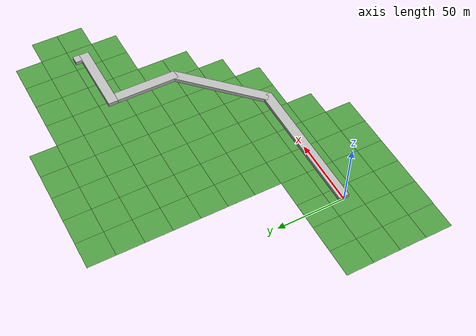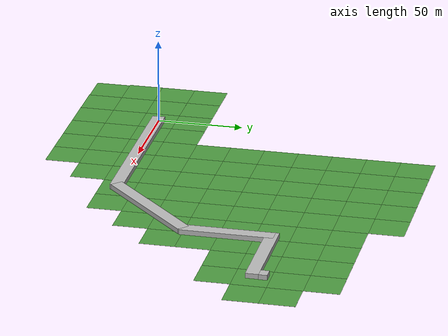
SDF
<sdf version="1.6">
 <world name="outdoor">
  <scene>
   <ambient>0.2 0.2 0.2 1</ambient>
   <grid>0</grid>
   <sky><clouds><speed>4</speed></clouds></sky>
   <background>0.7 0.7 0.7 1</background>
   <shadows>1</shadows>
  </scene>
  <plugin name="ros_interface_plugin" filename="librotors_gazebo_ros_interface_plugin.so"/>
  <plugin name="gazebo_octomap" filename="librotors_gazebo_octomap_plugin.so"/>
  <physics name="default_physics" default="0" type="ode">
   <ode>
    <solver>
     <type>quick</type>
     <iters>1000</iters>
     <sor>1.3</sor>
     <use_dynamic_moi_rescaling>0</use_dynamic_moi_rescaling>
    </solver>
    <constraints>
     <cfm>0</cfm>
     <erp>0.2</erp>
     <contact_max_correcting_vel>100</contact_max_correcting_vel>
     <contact_surface_layer>0.001</contact_surface_layer>
    </constraints>
   </ode>
   <max_step_size>0.01</max_step_size>
   <real_time_factor>1</real_time_factor>
   <real_time_update_rate>100</real_time_update_rate>
  </physics>
  <model name="grass_plane">
   <static>1</static>
   <link name="link">
    <collision name="collision">
     <geometry><plane><normal>0 0 1</normal><size>500 500</size></plane></geometry>
     <surface><friction><ode><mu>0.5</mu><mu2>0.5</mu2></ode></friction></surface>
    </collision>
    <visual name="visual_0">
     <pose>-40 -40 0 0 -0 0</pose>
     <cast_shadows>0</cast_shadows>
     <geometry><plane><normal>0 0 1</normal><size>20 20</size></plane></geometry>
     <material>
      <script>
       <uri>model://grass_plane/materials/scripts</uri>
       <uri>model://grass_plane/materials/textures</uri>
       <name>vrc/grass</name>
      </script>
     </material>
    </visual>
    <visual name="visual_1">
     <pose>-20 -40 0 0 -0 0</pose>
     <cast_shadows>0</cast_shadows>
     <geometry><plane><normal>0 0 1</normal><size>20 20</size></plane></geometry>
     <material>
      <script>
       <uri>model://grass_plane/materials/scripts</uri>
       <uri>model://grass_plane/materials/textures</uri>
       <name>vrc/grass</name>
      </script>
     </material>
    </visual>
    <visual name="visual_2">
     <pose>0 -40 0 0 -0 0</pose>
     <cast_shadows>0</cast_shadows>
     <geometry><plane><normal>0 0 1</normal><size>20 20</size></plane></geometry>
     <material>
      <script>
       <uri>model://grass_plane/materials/scripts</uri>
       <uri>model://grass_plane/materials/textures</uri>
       <name>vrc/grass</name>
      </script>
     </material>
    </visual>
    <visual name="visual_3">
     <pose>20 -40 0 0 -0 0</pose>
     <cast_shadows>0</cast_shadows>
     <geometry><plane><normal>0 0 1</normal><size>20 20</size></plane></geometry>
     <material>
      <script>
       <uri>model://grass_plane/materials/scripts</uri>
       <uri>model://grass_plane/materials/textures</uri>
       <name>vrc/grass</name>
      </script>
     </material>
    </visual>
    <visual name="visual_4">
     <pose>40 -40 0 0 -0 0</pose>
     <cast_shadows>0</cast_shadows>
     <geometry><plane><normal>0 0 1</normal><size>20 20</size></plane></geometry>
     <material>
      <script>
       <uri>model://grass_plane/materials/scripts</uri>
       <uri>model://grass_plane/materials/textures</uri>
       <name>vrc/grass</name>
      </script>
     </material>
    </visual>
    <visual name="visual_5">
     <pose>60 -40 0 0 -0 0</pose>
     <cast_shadows>0</cast_shadows>
     <geometry><plane><normal>0 0 1</normal><size>20 20</size></plane></geometry>
     <material>
      <script>
       <uri>model://grass_plane/materials/scripts</uri>
       <uri>model://grass_plane/materials/textures</uri>
       <name>vrc/grass</name>
      </script>
     </material>
    </visual>
    <visual name="visual_6">
     <pose>-40 -20 0 0 -0 0</pose>
     <cast_shadows>0</cast_shadows>
     <geometry><plane><normal>0 0 1</normal><size>20 20</size></plane></geometry>
     <material>
      <script>
       <uri>model://grass_plane/materials/scripts</uri>
       <uri>model://grass_plane/materials/textures</uri>
       <name>vrc/grass</name>
      </script>
     </material>
    </visual>
    <visual name="visual_7">
     <pose>-20 -20 0 0 -0 0</pose>
     <cast_shadows>0</cast_shadows>
     <geometry><plane><normal>0 0 1</normal><size>20 20</size></plane></geometry>
     <material>
      <script>
       <uri>model://grass_plane/materials/scripts</uri>
       <uri>model://grass_plane/materials/textures</uri>
       <name>vrc/grass</name>
      </script>
     </material>
    </visual>
    <visual name="visual_8">
     <pose>0 -20 0 0 -0 0</pose>
     <cast_shadows>0</cast_shadows>
     <geometry><plane><normal>0 0 1</normal><size>20 20</size></plane></geometry>
     <material>
      <script>
       <uri>model://grass_plane/materials/scripts</uri>
       <uri>model://grass_plane/materials/textures</uri>
       <name>vrc/grass</name>
      </script>
     </material>
    </visual>
    <visual name="visual_9">
     <pose>20 -20 0 0 -0 0</pose>
     <cast_shadows>0</cast_shadows>
     <geometry><plane><normal>0 0 1</normal><size>20 20</size></plane></geometry>
     <material>
      <script>
       <uri>model://grass_plane/materials/scripts</uri>
       <uri>model://grass_plane/materials/textures</uri>
       <name>vrc/grass</name>
      </script>
     </material>
    </visual>
    <visual name="visual_10">
     <pose>40 -20 0 0 -0 0</pose>
     <cast_shadows>0</cast_shadows>
     <geometry><plane><normal>0 0 1</normal><size>20 20</size></plane></geometry>
     <material>
      <script>
       <uri>model://grass_plane/materials/scripts</uri>
       <uri>model://grass_plane/materials/textures</uri>
       <name>vrc/grass</name>
      </script>
     </material>
    </visual>
    <visual name="visual_11">
     <pose>60 -20 0 0 -0 0</pose>
     <cast_shadows>0</cast_shadows>
     <geometry><plane><normal>0 0 1</normal><size>20 20</size></plane></geometry>
     <material>
      <script>
       <uri>model://grass_plane/materials/scripts</uri>
       <uri>model://grass_plane/materials/textures</uri>
       <name>vrc/grass</name>
      </script>
     </material>
    </visual>
    <visual name="visual_12">
     <pose>80 -20 0 0 -0 0</pose>
     <cast_shadows>0</cast_shadows>
     <geometry><plane><normal>0 0 1</normal><size>20 20</size></plane></geometry>
     <material>
      <script>
       <uri>model://grass_plane/materials/scripts</uri>
       <uri>model://grass_plane/materials/textures</uri>
       <name>vrc/grass</name>
      </script>
     </material>
    </visual>
    <visual name="visual_13">
     <pose>-40 0 0 0 -0 0</pose>
     <cast_shadows>0</cast_shadows>
     <geometry><plane><normal>0 0 1</normal><size>20 20</size></plane></geometry>
     <material>
      <script>
       <uri>model://grass_plane/materials/scripts</uri>
       <uri>model://grass_plane/materials/textures</uri>
       <name>vrc/grass</name>
      </script>
     </material>
    </visual>
    <visual name="visual_14">
     <pose>-20 0 0 0 -0 0</pose>
     <cast_shadows>0</cast_shadows>
     <geometry><plane><normal>0 0 1</normal><size>20 20</size></plane></geometry>
     <material>
      <script>
       <uri>model://grass_plane/materials/scripts</uri>
       <uri>model://grass_plane/materials/textures</uri>
       <name>vrc/grass</name>
      </script>
     </material>
    </visual>
    <visual name="visual_15">
     <cast_shadows>0</cast_shadows>
     <geometry><plane><normal>0 0 1</normal><size>20 20</size></plane></geometry>
     <material>
      <script>
       <uri>model://grass_plane/materials/scripts</uri>
       <uri>model://grass_plane/materials/textures</uri>
       <name>vrc/grass</name>
      </script>
     </material>
    </visual>
    <visual name="visual_16">
     <pose>20 0 0 0 -0 0</pose>
     <cast_shadows>0</cast_shadows>
     <geometry><plane><normal>0 0 1</normal><size>20 20</size></plane></geometry>
     <material>
      <script>
       <uri>model://grass_plane/materials/scripts</uri>
       <uri>model://grass_plane/materials/textures</uri>
       <name>vrc/grass</name>
      </script>
     </material>
    </visual>
    <visual name="visual_17">
     <pose>40 0 0 0 -0 0</pose>
     <cast_shadows>0</cast_shadows>
     <geometry><plane><normal>0 0 1</normal><size>20 20</size></plane></geometry>
     <material>
      <script>
       <uri>model://grass_plane/materials/scripts</uri>
       <uri>model://grass_plane/materials/textures</uri>
       <name>vrc/grass</name>
      </script>
     </material>
    </visual>
    <visual name="visual_18">
     <pose>60 0 0 0 -0 0</pose>
     <cast_shadows>0</cast_shadows>
     <geometry><plane><normal>0 0 1</normal><size>20 20</size></plane></geometry>
     <material>
      <script>
       <uri>model://grass_plane/materials/scripts</uri>
       <uri>model://grass_plane/materials/textures</uri>
       <name>vrc/grass</name>
      </script>
     </material>
    </visual>
    <visual name="visual_19">
     <pose>80 0 0 0 -0 0</pose>
     <cast_shadows>0</cast_shadows>
     <geometry><plane><normal>0 0 1</normal><size>20 20</size></plane></geometry>
     <material>
      <script>
       <uri>model://grass_plane/materials/scripts</uri>
       <uri>model://grass_plane/materials/textures</uri>
       <name>vrc/grass</name>
      </script>
     </material>
    </visual>
    <visual name="visual_20">
     <pose>100 0 0 0 -0 0</pose>
     <cast_shadows>0</cast_shadows>
     <geometry><plane><normal>0 0 1</normal><size>20 20</size></plane></geometry>
     <material>
      <script>
       <uri>model://grass_plane/materials/scripts</uri>
       <uri>model://grass_plane/materials/textures</uri>
       <name>vrc/grass</name>
      </script>
     </material>
    </visual>
    <visual name="visual_21">
     <pose>120 0 0 0 -0 0</pose>
     <cast_shadows>0</cast_shadows>
     <geometry><plane><normal>0 0 1</normal><size>20 20</size></plane></geometry>
     <material>
      <script>
       <uri>model://grass_plane/materials/scripts</uri>
       <uri>model://grass_plane/materials/textures</uri>
       <name>vrc/grass</name>
      </script>
     </material>
    </visual>
    <visual name="visual_22">
     <pose>-40 20 0 0 -0 0</pose>
     <cast_shadows>0</cast_shadows>
     <geometry><plane><normal>0 0 1</normal><size>20 20</size></plane></geometry>
     <material>
      <script>
       <uri>model://grass_plane/materials/scripts</uri>
       <uri>model://grass_plane/materials/textures</uri>
       <name>vrc/grass</name>
      </script>
     </material>
    </visual>
    <visual name="visual_23">
     <pose>-20 20 0 0 -0 0</pose>
     <cast_shadows>0</cast_shadows>
     <geometry><plane><normal>0 0 1</normal><size>20 20</size></plane></geometry>
     <material>
      <script>
       <uri>model://grass_plane/materials/scripts</uri>
       <uri>model://grass_plane/materials/textures</uri>
       <name>vrc/grass</name>
      </script>
     </material>
    </visual>
    <visual name="visual_24">
     <pose>0 20 0 0 -0 0</pose>
     <cast_shadows>0</cast_shadows>
     <geometry><plane><normal>0 0 1</normal><size>20 20</size></plane></geometry>
     <material>
      <script>
       <uri>model://grass_plane/materials/scripts</uri>
       <uri>model://grass_plane/materials/textures</uri>
       <name>vrc/grass</name>
      </script>
     </material>
    </visual>
    <visual name="visual_25">
     <pose>20 20 0 0 -0 0</pose>
     <cast_shadows>0</cast_shadows>
     <geometry><plane><normal>0 0 1</normal><size>20 20</size></plane></geometry>
     <material>
      <script>
       <uri>model://grass_plane/materials/scripts</uri>
       <uri>model://grass_plane/materials/textures</uri>
       <name>vrc/grass</name>
      </script>
     </material>
    </visual>
    <visual name="visual_26">
     <pose>40 20 0 0 -0 0</pose>
     <cast_shadows>0</cast_shadows>
     <geometry><plane><normal>0 0 1</normal><size>20 20</size></plane></geometry>
     <material>
      <script>
       <uri>model://grass_plane/materials/scripts</uri>
       <uri>model://grass_plane/materials/textures</uri>
       <name>vrc/grass</name>
      </script>
     </material>
    </visual>
    <visual name="visual_27">
     <pose>60 20 0 0 -0 0</pose>
     <cast_shadows>0</cast_shadows>
     <geometry><plane><normal>0 0 1</normal><size>20 20</size></plane></geometry>
     <material>
      <script>
       <uri>model://grass_plane/materials/scripts</uri>
       <uri>model://grass_plane/materials/textures</uri>
       <name>vrc/grass</name>
      </script>
     </material>
    </visual>
    <visual name="visual_28">
     <pose>80 20 0 0 -0 0</pose>
     <cast_shadows>0</cast_shadows>
     <geometry><plane><normal>0 0 1</normal><size>20 20</size></plane></geometry>
     <material>
      <script>
       <uri>model://grass_plane/materials/scripts</uri>
       <uri>model://grass_plane/materials/textures</uri>
       <name>vrc/grass</name>
      </script>
     </material>
    </visual>
    <visual name="visual_29">
     <pose>100 20 0 0 -0 0</pose>
     <cast_shadows>0</cast_shadows>
     <geometry><plane><normal>0 0 1</normal><size>20 20</size></plane></geometry>
     <material>
      <script>
       <uri>model://grass_plane/materials/scripts</uri>
       <uri>model://grass_plane/materials/textures</uri>
       <name>vrc/grass</name>
      </script>
     </material>
    </visual>
    <visual name="visual_30">
     <pose>120 20 0 0 -0 0</pose>
     <cast_shadows>0</cast_shadows>
     <geometry><plane><normal>0 0 1</normal><size>20 20</size></plane></geometry>
     <material>
      <script>
       <uri>model://grass_plane/materials/scripts</uri>
       <uri>model://grass_plane/materials/textures</uri>
       <name>vrc/grass</name>
      </script>
     </material>
    </visual>
    <visual name="visual_31">
     <pose>140 20 0 0 -0 0</pose>
     <cast_shadows>0</cast_shadows>
     <geometry><plane><normal>0 0 1</normal><size>20 20</size></plane></geometry>
     <material>
      <script>
       <uri>model://grass_plane/materials/scripts</uri>
       <uri>model://grass_plane/materials/textures</uri>
       <name>vrc/grass</name>
      </script>
     </material>
    </visual>
    <visual name="visual_32">
     <pose>40 40 0 0 -0 0</pose>
     <cast_shadows>0</cast_shadows>
     <geometry><plane><normal>0 0 1</normal><size>20 20</size></plane></geometry>
     <material>
      <script>
       <uri>model://grass_plane/materials/scripts</uri>
       <uri>model://grass_plane/materials/textures</uri>
       <name>vrc/grass</name>
      </script>
     </material>
    </visual>
    <visual name="visual_33">
     <pose>60 40 0 0 -0 0</pose>
     <cast_shadows>0</cast_shadows>
     <geometry><plane><normal>0 0 1</normal><size>20 20</size></plane></geometry>
     <material>
      <script>
       <uri>model://grass_plane/materials/scripts</uri>
       <uri>model://grass_plane/materials/textures</uri>
       <name>vrc/grass</name>
      </script>
     </material>
    </visual>
    <visual name="visual_34">
     <pose>80 40 0 0 -0 0</pose>
     <cast_shadows>0</cast_shadows>
     <geometry><plane><normal>0 0 1</normal><size>20 20</size></plane></geometry>
     <material>
      <script>
       <uri>model://grass_plane/materials/scripts</uri>
       <uri>model://grass_plane/materials/textures</uri>
       <name>vrc/grass</name>
      </script>
     </material>
    </visual>
    <visual name="visual_35">
     <pose>100 40 0 0 -0 0</pose>
     <cast_shadows>0</cast_shadows>
     <geometry><plane><normal>0 0 1</normal><size>20 20</size></plane></geometry>
     <material>
      <script>
       <uri>model://grass_plane/materials/scripts</uri>
       <uri>model://grass_plane/materials/textures</uri>
       <name>vrc/grass</name>
      </script>
     </material>
    </visual>
    <visual name="visual_36">
     <pose>120 40 0 0 -0 0</pose>
     <cast_shadows>0</cast_shadows>
     <geometry><plane><normal>0 0 1</normal><size>20 20</size></plane></geometry>
     <material>
      <script>
       <uri>model://grass_plane/materials/scripts</uri>
       <uri>model://grass_plane/materials/textures</uri>
       <name>vrc/grass</name>
      </script>
     </material>
    </visual>
    <visual name="visual_37">
     <pose>140 40 0 0 -0 0</pose>
     <cast_shadows>0</cast_shadows>
     <geometry><plane><normal>0 0 1</normal><size>20 20</size></plane></geometry>
     <material>
      <script>
       <uri>model://grass_plane/materials/scripts</uri>
       <uri>model://grass_plane/materials/textures</uri>
       <name>vrc/grass</name>
      </script>
     </material>
    </visual>
    <visual name="visual_38">
     <pose>160 40 0 0 -0 0</pose>
     <cast_shadows>0</cast_shadows>
     <geometry><plane><normal>0 0 1</normal><size>20 20</size></plane></geometry>
     <material>
      <script>
       <uri>model://grass_plane/materials/scripts</uri>
       <uri>model://grass_plane/materials/textures</uri>
       <name>vrc/grass</name>
      </script>
     </material>
    </visual>
    <visual name="visual_39">
     <pose>40 60 0 0 -0 0</pose>
     <cast_shadows>0</cast_shadows>
     <geometry><plane><normal>0 0 1</normal><size>20 20</size></plane></geometry>
     <material>
      <script>
       <uri>model://grass_plane/materials/scripts</uri>
       <uri>model://grass_plane/materials/textures</uri>
       <name>vrc/grass</name>
      </script>
     </material>
    </visual>
    <visual name="visual_40">
     <pose>60 60 0 0 -0 0</pose>
     <cast_shadows>0</cast_shadows>
     <geometry><plane><normal>0 0 1</normal><size>20 20</size></plane></geometry>
     <material>
      <script>
       <uri>model://grass_plane/materials/scripts</uri>
       <uri>model://grass_plane/materials/textures</uri>
       <name>vrc/grass</name>
      </script>
     </material>
    </visual>
    <visual name="visual_41">
     <pose>80 60 0 0 -0 0</pose>
     <cast_shadows>0</cast_shadows>
     <geometry><plane><normal>0 0 1</normal><size>20 20</size></plane></geometry>
     <material>
      <script>
       <uri>model://grass_plane/materials/scripts</uri>
       <uri>model://grass_plane/materials/textures</uri>
       <name>vrc/grass</name>
      </script>
     </material>
    </visual>
    <visual name="visual_42">
     <pose>100 60 0 0 -0 0</pose>
     <cast_shadows>0</cast_shadows>
     <geometry><plane><normal>0 0 1</normal><size>20 20</size></plane></geometry>
     <material>
      <script>
       <uri>model://grass_plane/materials/scripts</uri>
       <uri>model://grass_plane/materials/textures</uri>
       <name>vrc/grass</name>
      </script>
     </material>
    </visual>
    <visual name="visual_43">
     <pose>120 60 0 0 -0 0</pose>
     <cast_shadows>0</cast_shadows>
     <geometry><plane><normal>0 0 1</normal><size>20 20</size></plane></geometry>
     <material>
      <script>
       <uri>model://grass_plane/materials/scripts</uri>
       <uri>model://grass_plane/materials/textures</uri>
       <name>vrc/grass</name>
      </script>
     </material>
    </visual>
    <visual name="visual_44">
     <pose>140 60 0 0 -0 0</pose>
     <cast_shadows>0</cast_shadows>
     <geometry><plane><normal>0 0 1</normal><size>20 20</size></plane></geometry>
     <material>
      <script>
       <uri>model://grass_plane/materials/scripts</uri>
       <uri>model://grass_plane/materials/textures</uri>
       <name>vrc/grass</name>
      </script>
     </material>
    </visual>
    <visual name="visual_45">
     <pose>160 60 0 0 -0 0</pose>
     <cast_shadows>0</cast_shadows>
     <geometry><plane><normal>0 0 1</normal><size>20 20</size></plane></geometry>
     <material>
      <script>
       <uri>model://grass_plane/materials/scripts</uri>
       <uri>model://grass_plane/materials/textures</uri>
       <name>vrc/grass</name>
      </script>
     </material>
    </visual>
    <visual name="visual_46">
     <pose>40 80 0 0 -0 0</pose>
     <cast_shadows>0</cast_shadows>
     <geometry><plane><normal>0 0 1</normal><size>20 20</size></plane></geometry>
     <material>
      <script>
       <uri>model://grass_plane/materials/scripts</uri>
       <uri>model://grass_plane/materials/textures</uri>
       <name>vrc/grass</name>
      </script>
     </material>
    </visual>
    <visual name="visual_47">
     <pose>60 80 0 0 -0 0</pose>
     <cast_shadows>0</cast_shadows>
     <geometry><plane><normal>0 0 1</normal><size>20 20</size></plane></geometry>
     <material>
      <script>
       <uri>model://grass_plane/materials/scripts</uri>
       <uri>model://grass_plane/materials/textures</uri>
       <name>vrc/grass</name>
      </script>
     </material>
    </visual>
    <visual name="visual_48">
     <pose>80 80 0 0 -0 0</pose>
     <cast_shadows>0</cast_shadows>
     <geometry><plane><normal>0 0 1</normal><size>20 20</size></plane></geometry>
     <material>
      <script>
       <uri>model://grass_plane/materials/scripts</uri>
       <uri>model://grass_plane/materials/textures</uri>
       <name>vrc/grass</name>
      </script>
     </material>
    </visual>
    <visual name="visual_49">
     <pose>100 80 0 0 -0 0</pose>
     <cast_shadows>0</cast_shadows>
     <geometry><plane><normal>0 0 1</normal><size>20 20</size></plane></geometry>
     <material>
      <script>
       <uri>model://grass_plane/materials/scripts</uri>
       <uri>model://grass_plane/materials/textures</uri>
       <name>vrc/grass</name>
      </script>
     </material>
    </visual>
    <visual name="visual_50">
     <pose>120 80 0 0 -0 0</pose>
     <cast_shadows>0</cast_shadows>
     <geometry><plane><normal>0 0 1</normal><size>20 20</size></plane></geometry>
     <material>
      <script>
       <uri>model://grass_plane/materials/scripts</uri>
       <uri>model://grass_plane/materials/textures</uri>
       <name>vrc/grass</name>
      </script>
     </material>
    </visual>
    <visual name="visual_51">
     <pose>140 80 0 0 -0 0</pose>
     <cast_shadows>0</cast_shadows>
     <geometry><plane><normal>0 0 1</normal><size>20 20</size></plane></geometry>
     <material>
      <script>
       <uri>model://grass_plane/materials/scripts</uri>
       <uri>model://grass_plane/materials/textures</uri>
       <name>vrc/grass</name>
      </script>
     </material>
    </visual>
    <visual name="visual_52">
     <pose>160 80 0 0 -0 0</pose>
     <cast_shadows>0</cast_shadows>
     <geometry><plane><normal>0 0 1</normal><size>20 20</size></plane></geometry>
     <material>
      <script>
       <uri>model://grass_plane/materials/scripts</uri>
       <uri>model://grass_plane/materials/textures</uri>
       <name>vrc/grass</name>
      </script>
     </material>
    </visual>
    <visual name="visual_53">
     <pose>180 80 0 0 -0 0</pose>
     <cast_shadows>0</cast_shadows>
     <geometry><plane><normal>0 0 1</normal><size>20 20</size></plane></geometry>
     <material>
      <script>
       <uri>model://grass_plane/materials/scripts</uri>
       <uri>model://grass_plane/materials/textures</uri>
       <name>vrc/grass</name>
      </script>
     </material>
    </visual>
    <visual name="visual_54">
     <pose>200 80 0 0 -0 0</pose>
     <cast_shadows>0</cast_shadows>
     <geometry><plane><normal>0 0 1</normal><size>20 20</size></plane></geometry>
     <material>
      <script>
       <uri>model://grass_plane/materials/scripts</uri>
       <uri>model://grass_plane/materials/textures</uri>
       <name>vrc/grass</name>
      </script>
     </material>
    </visual>
    <visual name="visual_55">
     <pose>40 100 0 0 -0 0</pose>
     <cast_shadows>0</cast_shadows>
     <geometry><plane><normal>0 0 1</normal><size>20 20</size></plane></geometry>
     <material>
      <script>
       <uri>model://grass_plane/materials/scripts</uri>
       <uri>model://grass_plane/materials/textures</uri>
       <name>vrc/grass</name>
      </script>
     </material>
    </visual>
    <visual name="visual_56">
     <pose>60 100 0 0 -0 0</pose>
     <cast_shadows>0</cast_shadows>
     <geometry><plane><normal>0 0 1</normal><size>20 20</size></plane></geometry>
     <material>
      <script>
       <uri>model://grass_plane/materials/scripts</uri>
       <uri>model://grass_plane/materials/textures</uri>
       <name>vrc/grass</name>
      </script>
     </material>
    </visual>
    <visual name="visual_57">
     <pose>80 100 0 0 -0 0</pose>
     <cast_shadows>0</cast_shadows>
     <geometry><plane><normal>0 0 1</normal><size>20 20</size></plane></geometry>
     <material>
      <script>
       <uri>model://grass_plane/materials/scripts</uri>
       <uri>model://grass_plane/materials/textures</uri>
       <name>vrc/grass</name>
      </script>
     </material>
    </visual>
    <visual name="visual_58">
     <pose>100 100 0 0 -0 0</pose>
     <cast_shadows>0</cast_shadows>
     <geometry><plane><normal>0 0 1</normal><size>20 20</size></plane></geometry>
     <material>
      <script>
       <uri>model://grass_plane/materials/scripts</uri>
       <uri>model://grass_plane/materials/textures</uri>
       <name>vrc/grass</name>
      </script>
     </material>
    </visual>
    <visual name="visual_59">
     <pose>120 100 0 0 -0 0</pose>
     <cast_shadows>0</cast_shadows>
     <geometry><plane><normal>0 0 1</normal><size>20 20</size></plane></geometry>
     <material>
      <script>
       <uri>model://grass_plane/materials/scripts</uri>
       <uri>model://grass_plane/materials/textures</uri>
       <name>vrc/grass</name>
      </script>
     </material>
    </visual>
    <visual name="visual_60">
     <pose>140 100 0 0 -0 0</pose>
     <cast_shadows>0</cast_shadows>
     <geometry><plane><normal>0 0 1</normal><size>20 20</size></plane></geometry>
     <material>
      <script>
       <uri>model://grass_plane/materials/scripts</uri>
       <uri>model://grass_plane/materials/textures</uri>
       <name>vrc/grass</name>
      </script>
     </material>
    </visual>
    <visual name="visual_61">
     <pose>160 100 0 0 -0 0</pose>
     <cast_shadows>0</cast_shadows>
     <geometry><plane><normal>0 0 1</normal><size>20 20</size></plane></geometry>
     <material>
      <script>
       <uri>model://grass_plane/materials/scripts</uri>
       <uri>model://grass_plane/materials/textures</uri>
       <name>vrc/grass</name>
      </script>
     </material>
    </visual>
    <visual name="visual_62">
     <pose>180 100 0 0 -0 0</pose>
     <cast_shadows>0</cast_shadows>
     <geometry><plane><normal>0 0 1</normal><size>20 20</size></plane></geometry>
     <material>
      <script>
       <uri>model://grass_plane/materials/scripts</uri>
       <uri>model://grass_plane/materials/textures</uri>
       <name>vrc/grass</name>
      </script>
     </material>
    </visual>
    <visual name="visual_63">
     <pose>200 100 0 0 -0 0</pose>
     <cast_shadows>0</cast_shadows>
     <geometry><plane><normal>0 0 1</normal><size>20 20</size></plane></geometry>
     <material>
      <script>
       <uri>model://grass_plane/materials/scripts</uri>
       <uri>model://grass_plane/materials/textures</uri>
       <name>vrc/grass</name>
      </script>
     </material>
    </visual>
    <visual name="visual_63a">
     <pose>220 100 0 0 -0 0</pose>
     <cast_shadows>0</cast_shadows>
     <geometry><plane><normal>0 0 1</normal><size>20 20</size></plane></geometry>
     <material>
      <script>
       <uri>model://grass_plane/materials/scripts</uri>
       <uri>model://grass_plane/materials/textures</uri>
       <name>vrc/grass</name>
      </script>
     </material>
    </visual>
    <visual name="visual_64">
     <pose>40 120 0 0 -0 0</pose>
     <cast_shadows>0</cast_shadows>
     <geometry><plane><normal>0 0 1</normal><size>20 20</size></plane></geometry>
     <material>
      <script>
       <uri>model://grass_plane/materials/scripts</uri>
       <uri>model://grass_plane/materials/textures</uri>
       <name>vrc/grass</name>
      </script>
     </material>
    </visual>
    <visual name="visual_65">
     <pose>60 120 0 0 -0 0</pose>
     <cast_shadows>0</cast_shadows>
     <geometry><plane><normal>0 0 1</normal><size>20 20</size></plane></geometry>
     <material>
      <script>
       <uri>model://grass_plane/materials/scripts</uri>
       <uri>model://grass_plane/materials/textures</uri>
       <name>vrc/grass</name>
      </script>
     </material>
    </visual>
    <visual name="visual_66">
     <pose>80 120 0 0 -0 0</pose>
     <cast_shadows>0</cast_shadows>
     <geometry><plane><normal>0 0 1</normal><size>20 20</size></plane></geometry>
     <material>
      <script>
       <uri>model://grass_plane/materials/scripts</uri>
       <uri>model://grass_plane/materials/textures</uri>
       <name>vrc/grass</name>
      </script>
     </material>
    </visual>
    <visual name="visual_67">
     <pose>100 120 0 0 -0 0</pose>
     <cast_shadows>0</cast_shadows>
     <geometry><plane><normal>0 0 1</normal><size>20 20</size></plane></geometry>
     <material>
      <script>
       <uri>model://grass_plane/materials/scripts</uri>
       <uri>model://grass_plane/materials/textures</uri>
       <name>vrc/grass</name>
      </script>
     </material>
    </visual>
    <visual name="visual_68">
     <pose>120 120 0 0 -0 0</pose>
     <cast_shadows>0</cast_shadows>
     <geometry><plane><normal>0 0 1</normal><size>20 20</size></plane></geometry>
     <material>
      <script>
       <uri>model://grass_plane/materials/scripts</uri>
       <uri>model://grass_plane/materials/textures</uri>
       <name>vrc/grass</name>
      </script>
     </material>
    </visual>
    <visual name="visual_69">
     <pose>140 120 0 0 -0 0</pose>
     <cast_shadows>0</cast_shadows>
     <geometry><plane><normal>0 0 1</normal><size>20 20</size></plane></geometry>
     <material>
      <script>
       <uri>model://grass_plane/materials/scripts</uri>
       <uri>model://grass_plane/materials/textures</uri>
       <name>vrc/grass</name>
      </script>
     </material>
    </visual>
    <visual name="visual_70">
     <pose>160 120 0 0 -0 0</pose>
     <cast_shadows>0</cast_shadows>
     <geometry><plane><normal>0 0 1</normal><size>20 20</size></plane></geometry>
     <material>
      <script>
       <uri>model://grass_plane/materials/scripts</uri>
       <uri>model://grass_plane/materials/textures</uri>
       <name>vrc/grass</name>
      </script>
     </material>
    </visual>
    <visual name="visual_71">
     <pose>180 120 0 0 -0 0</pose>
     <cast_shadows>0</cast_shadows>
     <geometry><plane><normal>0 0 1</normal><size>20 20</size></plane></geometry>
     <material>
      <script>
       <uri>model://grass_plane/materials/scripts</uri>
       <uri>model://grass_plane/materials/textures</uri>
       <name>vrc/grass</name>
      </script>
     </material>
    </visual>
    <visual name="visual_72">
     <pose>200 120 0 0 -0 0</pose>
     <cast_shadows>0</cast_shadows>
     <geometry><plane><normal>0 0 1</normal><size>20 20</size></plane></geometry>
     <material>
      <script>
       <uri>model://grass_plane/materials/scripts</uri>
       <uri>model://grass_plane/materials/textures</uri>
       <name>vrc/grass</name>
      </script>
     </material>
    </visual>
    <visual name="visual_72a">
     <pose>220 120 0 0 -0 0</pose>
     <cast_shadows>0</cast_shadows>
     <geometry><plane><normal>0 0 1</normal><size>20 20</size></plane></geometry>
     <material>
      <script>
       <uri>model://grass_plane/materials/scripts</uri>
       <uri>model://grass_plane/materials/textures</uri>
       <name>vrc/grass</name>
      </script>
     </material>
    </visual>
    <visual name="visual_73">
     <pose>40 140 0 0 -0 0</pose>
     <cast_shadows>0</cast_shadows>
     <geometry><plane><normal>0 0 1</normal><size>20 20</size></plane></geometry>
     <material>
      <script>
       <uri>model://grass_plane/materials/scripts</uri>
       <uri>model://grass_plane/materials/textures</uri>
       <name>vrc/grass</name>
      </script>
     </material>
    </visual>
    <visual name="visual_74">
     <pose>60 140 0 0 -0 0</pose>
     <cast_shadows>0</cast_shadows>
     <geometry><plane><normal>0 0 1</normal><size>20 20</size></plane></geometry>
     <material>
      <script>
       <uri>model://grass_plane/materials/scripts</uri>
       <uri>model://grass_plane/materials/textures</uri>
       <name>vrc/grass</name>
      </script>
     </material>
    </visual>
    <visual name="visual_75">
     <pose>80 140 0 0 -0 0</pose>
     <cast_shadows>0</cast_shadows>
     <geometry><plane><normal>0 0 1</normal><size>20 20</size></plane></geometry>
     <material>
      <script>
       <uri>model://grass_plane/materials/scripts</uri>
       <uri>model://grass_plane/materials/textures</uri>
       <name>vrc/grass</name>
      </script>
     </material>
    </visual>
    <visual name="visual_76">
     <pose>100 140 0 0 -0 0</pose>
     <cast_shadows>0</cast_shadows>
     <geometry><plane><normal>0 0 1</normal><size>20 20</size></plane></geometry>
     <material>
      <script>
       <uri>model://grass_plane/materials/scripts</uri>
       <uri>model://grass_plane/materials/textures</uri>
       <name>vrc/grass</name>
      </script>
     </material>
    </visual>
    <visual name="visual_77">
     <pose>120 140 0 0 -0 0</pose>
     <cast_shadows>0</cast_shadows>
     <geometry><plane><normal>0 0 1</normal><size>20 20</size></plane></geometry>
     <material>
      <script>
       <uri>model://grass_plane/materials/scripts</uri>
       <uri>model://grass_plane/materials/textures</uri>
       <name>vrc/grass</name>
      </script>
     </material>
    </visual>
    <visual name="visual_78">
     <pose>140 140 0 0 -0 0</pose>
     <cast_shadows>0</cast_shadows>
     <geometry><plane><normal>0 0 1</normal><size>20 20</size></plane></geometry>
     <material>
      <script>
       <uri>model://grass_plane/materials/scripts</uri>
       <uri>model://grass_plane/materials/textures</uri>
       <name>vrc/grass</name>
      </script>
     </material>
    </visual>
    <visual name="visual_79">
     <pose>160 140 0 0 -0 0</pose>
     <cast_shadows>0</cast_shadows>
     <geometry><plane><normal>0 0 1</normal><size>20 20</size></plane></geometry>
     <material>
      <script>
       <uri>model://grass_plane/materials/scripts</uri>
       <uri>model://grass_plane/materials/textures</uri>
       <name>vrc/grass</name>
      </script>
     </material>
    </visual>
    <visual name="visual_80">
     <pose>180 140 0 0 -0 0</pose>
     <cast_shadows>0</cast_shadows>
     <geometry><plane><normal>0 0 1</normal><size>20 20</size></plane></geometry>
     <material>
      <script>
       <uri>model://grass_plane/materials/scripts</uri>
       <uri>model://grass_plane/materials/textures</uri>
       <name>vrc/grass</name>
      </script>
     </material>
    </visual>
    <visual name="visual_81">
     <pose>200 140 0 0 -0 0</pose>
     <cast_shadows>0</cast_shadows>
     <geometry><plane><normal>0 0 1</normal><size>20 20</size></plane></geometry>
     <material>
      <script>
       <uri>model://grass_plane/materials/scripts</uri>
       <uri>model://grass_plane/materials/textures</uri>
       <name>vrc/grass</name>
      </script>
     </material>
    </visual>
    <visual name="visual_82">
     <pose>40 160 0 0 -0 0</pose>
     <cast_shadows>0</cast_shadows>
     <geometry><plane><normal>0 0 1</normal><size>20 20</size></plane></geometry>
     <material>
      <script>
       <uri>model://grass_plane/materials/scripts</uri>
       <uri>model://grass_plane/materials/textures</uri>
       <name>vrc/grass</name>
      </script>
     </material>
    </visual>
    <visual name="visual_83">
     <pose>60 160 0 0 -0 0</pose>
     <cast_shadows>0</cast_shadows>
     <geometry><plane><normal>0 0 1</normal><size>20 20</size></plane></geometry>
     <material>
      <script>
       <uri>model://grass_plane/materials/scripts</uri>
       <uri>model://grass_plane/materials/textures</uri>
       <name>vrc/grass</name>
      </script>
     </material>
    </visual>
    <visual name="visual_84">
     <pose>80 160 0 0 -0 0</pose>
     <cast_shadows>0</cast_shadows>
     <geometry><plane><normal>0 0 1</normal><size>20 20</size></plane></geometry>
     <material>
      <script>
       <uri>model://grass_plane/materials/scripts</uri>
       <uri>model://grass_plane/materials/textures</uri>
       <name>vrc/grass</name>
      </script>
     </material>
    </visual>
    <visual name="visual_85">
     <pose>100 160 0 0 -0 0</pose>
     <cast_shadows>0</cast_shadows>
     <geometry><plane><normal>0 0 1</normal><size>20 20</size></plane></geometry>
     <material>
      <script>
       <uri>model://grass_plane/materials/scripts</uri>
       <uri>model://grass_plane/materials/textures</uri>
       <name>vrc/grass</name>
      </script>
     </material>
    </visual>
    <visual name="visual_86">
     <pose>120 160 0 0 -0 0</pose>
     <cast_shadows>0</cast_shadows>
     <geometry><plane><normal>0 0 1</normal><size>20 20</size></plane></geometry>
     <material>
      <script>
       <uri>model://grass_plane/materials/scripts</uri>
       <uri>model://grass_plane/materials/textures</uri>
       <name>vrc/grass</name>
      </script>
     </material>
    </visual>
   </link>
  </model>
  <model name="road_boxes">
   <static>1</static>
   <link name="link">
    <visual name="visual_1">
     <pose>51 0 1.45 0 -0 0</pose>
     <geometry><box><size>102 7.34 2.9</size></box></geometry>
    </visual>
    <collision name="collision_1">
     <pose>51 0 1.45 0 -0 0</pose>
     <geometry><box><size>102 7.34 2.9</size></box></geometry>
     <surface><friction><ode><mu>0.8</mu><mu2>0.8</mu2></ode></friction></surface>
    </collision>
    <visual name="visual_2">
     <pose>125 25 1.45 0 -0 0.78539</pose>
     <geometry><box><size>72 7.34 2.9</size></box></geometry>
    </visual>
    <collision name="collision_2">
     <pose>125 25 1.45 0 -0 0.78539</pose>
     <geometry><box><size>72 7.34 2.9</size></box></geometry>
     <surface><friction><ode><mu>0.8</mu><mu2>0.8</mu2></ode></friction></surface>
    </collision>
    <visual name="visual_3">
     <pose>150 75 1.45 0 -0 0</pose>
     <geometry><box><size>7.34 53 2.9</size></box></geometry>
    </visual>
    <collision name="collision_3">
     <pose>150 75 1.45 0 -0 0</pose>
     <geometry><box><size>7.34 53 2.9</size></box></geometry>
     <surface><friction><ode><mu>0.8</mu><mu2>0.8</mu2></ode></friction></surface>
    </collision>
    <visual name="visual_4">
     <pose>173.5 100 1.45 0 -0 0</pose>
     <geometry><box><size>54.5 7.34 2.9</size></box></geometry>
    </visual>
    <collision name="collision_4">
     <pose>173.5 100 1.45 0 -0 0</pose>
     <geometry><box><size>54.5 7.34 2.9</size></box></geometry>
     <surface><friction><ode><mu>0.8</mu><mu2>0.8</mu2></ode></friction></surface>
    </collision>
    <visual name="visual_5">
     <pose>198 106 1.45 0 -0 0</pose>
     <geometry><box><size>6 5 2.9</size></box></geometry>
    </visual>
    <collision name="collision_5">
     <pose>198 106 1.45 0 -0 0</pose>
     <geometry><box><size>6 5 2.9</size></box></geometry>
     <surface><friction><ode><mu>0.8</mu><mu2>0.8</mu2></ode></friction></surface>
    </collision>
   </link>
  </model>
  <gravity>0 0 -9.8</gravity>
  <magnetic_field>6e-06 2.3e-05 -4.2e-05</magnetic_field>
  <atmosphere type="adiabatic"/>
  <audio><device>default</device></audio>
  <spherical_coordinates>
   <surface_model>EARTH_WGS84</surface_model>
   <latitude_deg>0</latitude_deg>
   <longitude_deg>0</longitude_deg>
   <elevation>0</elevation>
   <heading_deg>0</heading_deg>
  </spherical_coordinates>
  <light name="user_directional_light_0" type="directional">
   <pose>34.418 -32.5333 1 0 -0 0</pose>
   <diffuse>0.5 0.5 0.5 1</diffuse>
   <specular>0.1 0.1 0.1 1</specular>
   <direction>0.1 0.1 -0.9</direction>
   <attenuation>
    <range>20</range>
    <constant>0.5</constant>
    <linear>0.01</linear>
    <quadratic>0.001</quadratic>
   </attenuation>
  </light>
 </world>
</sdf>
